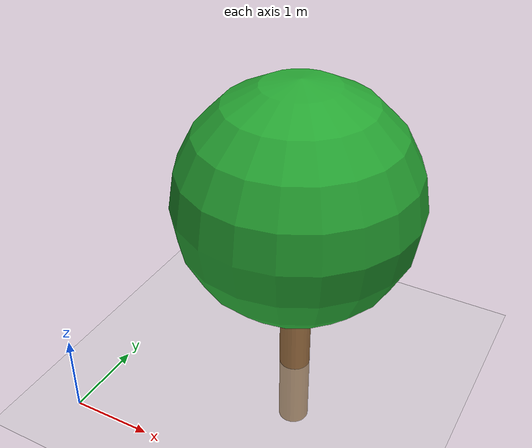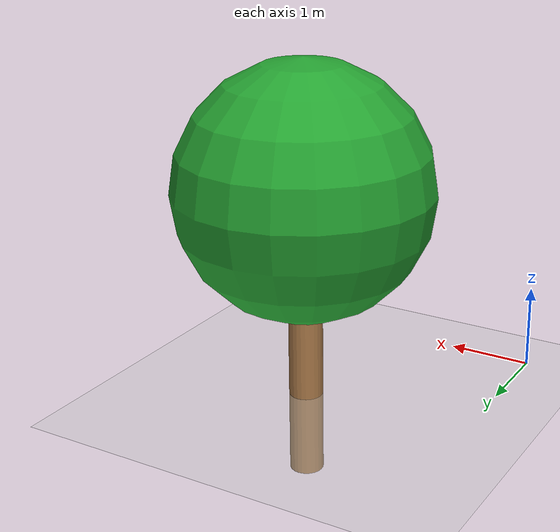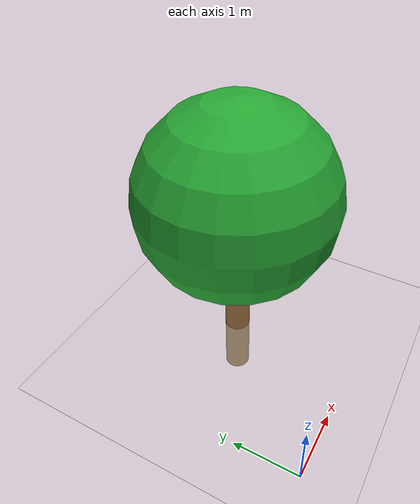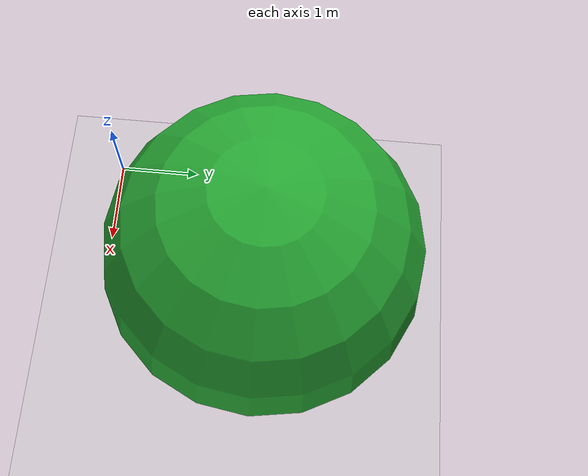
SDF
<?xml version="1.0" ?>
<sdf version="1.5">
  <world name="orange_farm">
    <!-- Physics settings -->
    <physics type="ode">
      <max_step_size>0.001</max_step_size>
      <real_time_factor>1</real_time_factor>
      <real_time_update_rate>1000</real_time_update_rate>
      <gravity>0 0 -9.81</gravity>
    </physics>

    <!-- World lighting -->
    <include>
      <uri>model://sun</uri>
    </include>

    <!-- Ground plane -->
    <include>
      <uri>model://ground_plane</uri>
    </include>

    <!-- Orange trees -->
    <model name="orange_tree_1">
      <static>true</static>
      <pose>2 2 0 0 0 0</pose>
      <link name="trunk">
        <visual name="trunk_visual">
          <geometry>
            <cylinder>
              <radius>0.2</radius>
              <length>2.0</length>
            </cylinder>
          </geometry>
          <material>
            <script>
              <uri>file://media/materials/scripts/gazebo.material</uri>
              <name>Gazebo/Wood</name>
            </script>
          </material>
        </visual>
        <collision name="trunk_collision">
          <geometry>
            <cylinder>
              <radius>0.2</radius>
              <length>2.0</length>
            </cylinder>
          </geometry>
        </collision>
      </link>
      <link name="foliage">
        <pose>0 0 2.5 0 0 0</pose>
        <visual name="foliage_visual">
          <geometry>
            <sphere>
              <radius>1.5</radius>
            </sphere>
          </geometry>
          <material>
            <script>
              <uri>file://media/materials/scripts/gazebo.material</uri>
              <name>Gazebo/Green</name>
            </script>
          </material>
        </visual>
        <collision name="foliage_collision">
          <geometry>
            <sphere>
              <radius>1.5</radius>
            </sphere>
          </geometry>
        </collision>
      </link>
    </model>

    <!-- Orange fruits -->
    <model name="orange_1">
      <pose>2.5 2.2 2.0 0 0 0</pose>
      <link name="link">
        <visual name="visual">
          <geometry>
            <sphere>
              <radius>0.05</radius>
            </sphere>
          </geometry>
          <material>
            <script>
              <uri>file://media/materials/scripts/gazebo.material</uri>
              <name>Gazebo/Orange</name>
            </script>
          </material>
        </visual>
        <collision name="collision">
          <geometry>
            <sphere>
              <radius>0.05</radius>
            </sphere>
          </geometry>
        </collision>
        <inertial>
          <mass>0.1</mass>
          <inertia>
            <ixx>0.0001</ixx>
            <iyy>0.0001</iyy>
            <izz>0.0001</izz>
            <ixy>0</ixy>
            <ixz>0</ixz>
            <iyz>0</iyz>
          </inertia>
        </inertial>
      </link>
    </model>

    <!-- Environment features -->
    <scene>
      <ambient>0.4 0.4 0.4 1</ambient>
      <background>0.7 0.7 0.7 1</background>
      <shadows>true</shadows>
    </scene>

    <!-- Custom plugins -->
    <plugin name="fruit_spawner" filename="libfruit_spawner.so"/>
    <plugin name="environment_control" filename="libenvironment_control.so"/>
  </world>
</sdf>
